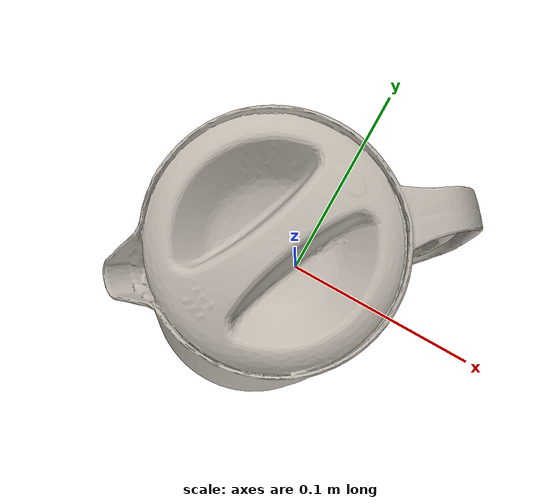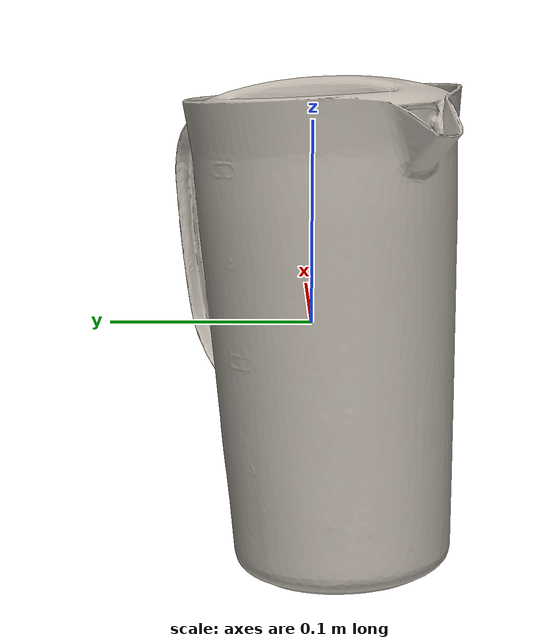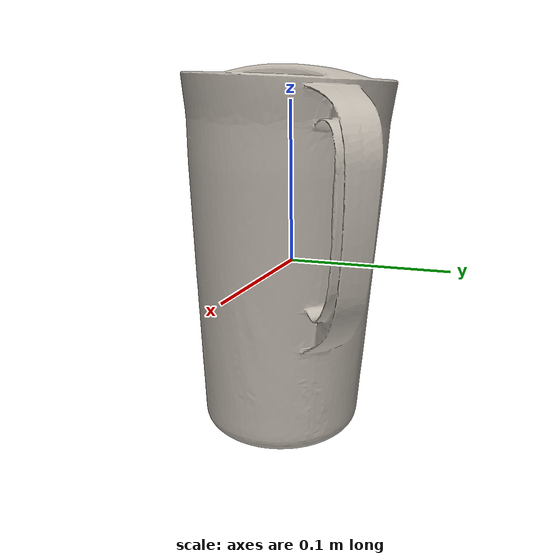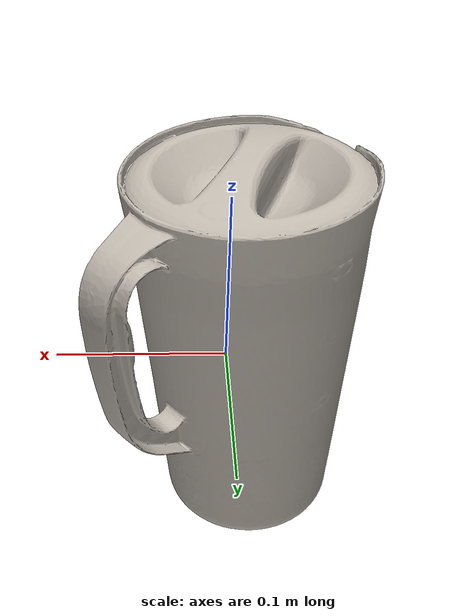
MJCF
<mujoco model="pitcher_base">
  <default>
    <default class="visual">
      <geom group="1" type="mesh" contype="0" conaffinity="0"/>
    </default>
    <default class="collision">
      <geom group="0" type="mesh"/>
    </default>
  </default>
  <asset>
    <texture type="2d" name="pitcher_base" file="pitcher_base.png"/>
    <material name="pitcher_base" texture="pitcher_base" specular="0.4000000000000001" shininess="0.001"/>
    <mesh name="pitcher_base" file="pitcher_base.obj"/>
  </asset>
  <worldbody>
    <body>
    <body name="object">
      <geom material="pitcher_base" mesh="pitcher_base" class="visual"/>
      <geom mesh="pitcher_base" class="collision"/>
    </body>
	      <site rgba="0 0 0 0" size="0.005" pos="0 0 -0.04" name="bottom_site" />
	      <site rgba="0 0 0 0" size="0.005" pos="0 0 0.04" name="top_site" />
	      <site rgba="0 0 0 0" size="0.005" pos="0.005 0.005 0" name="horizontal_radius_site" />
   </body>
  </worldbody>
</mujoco>
